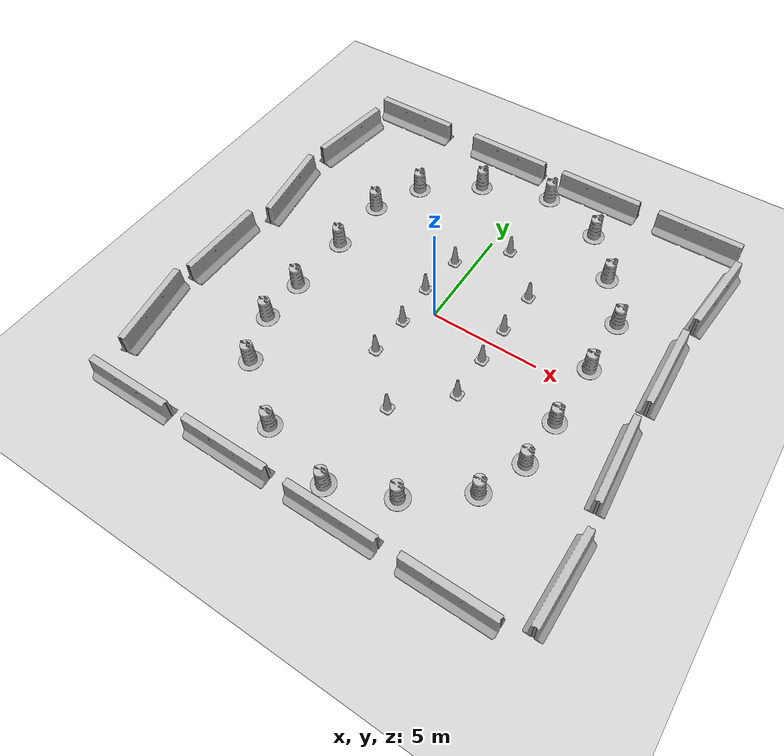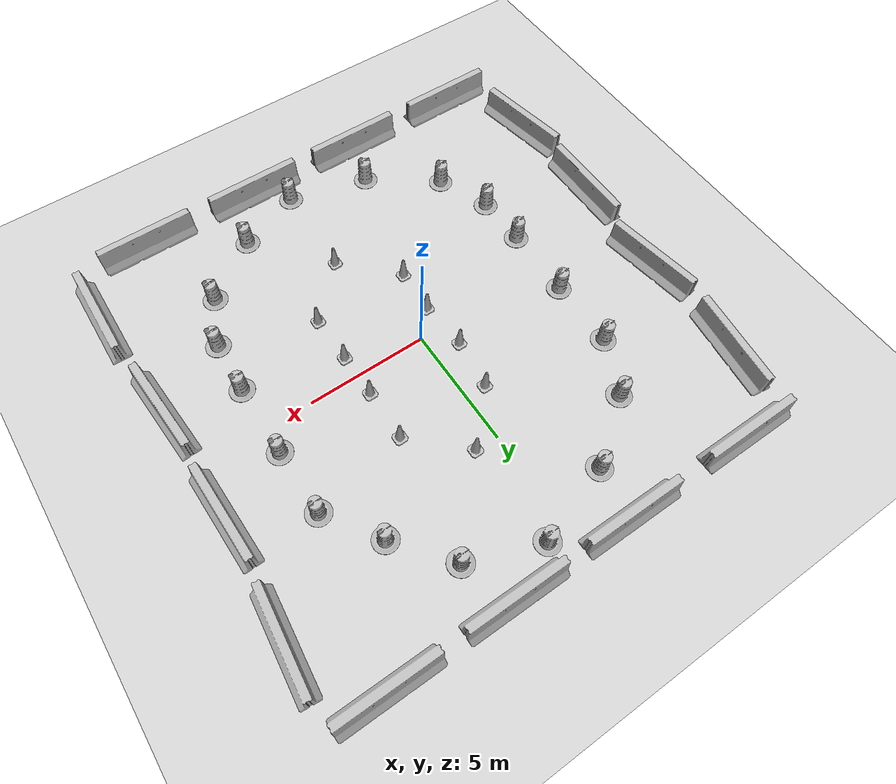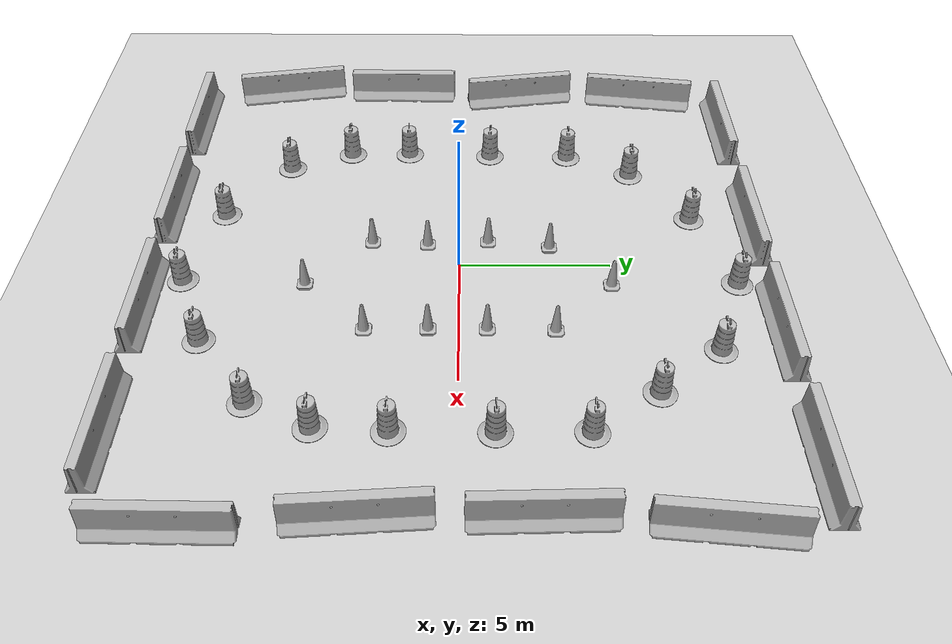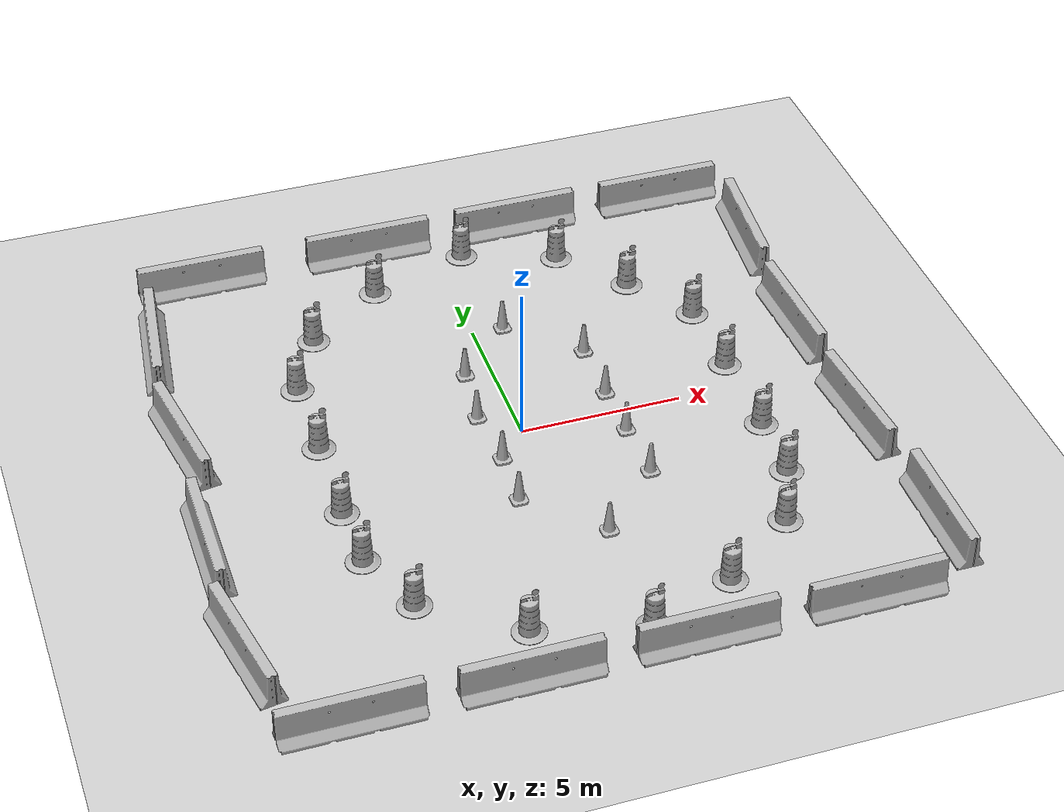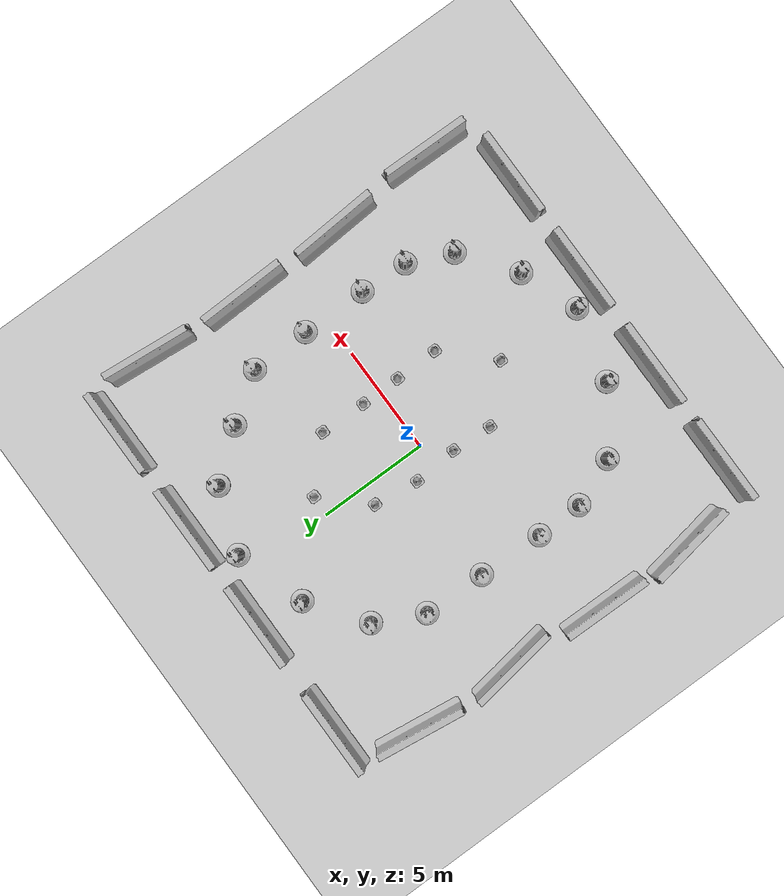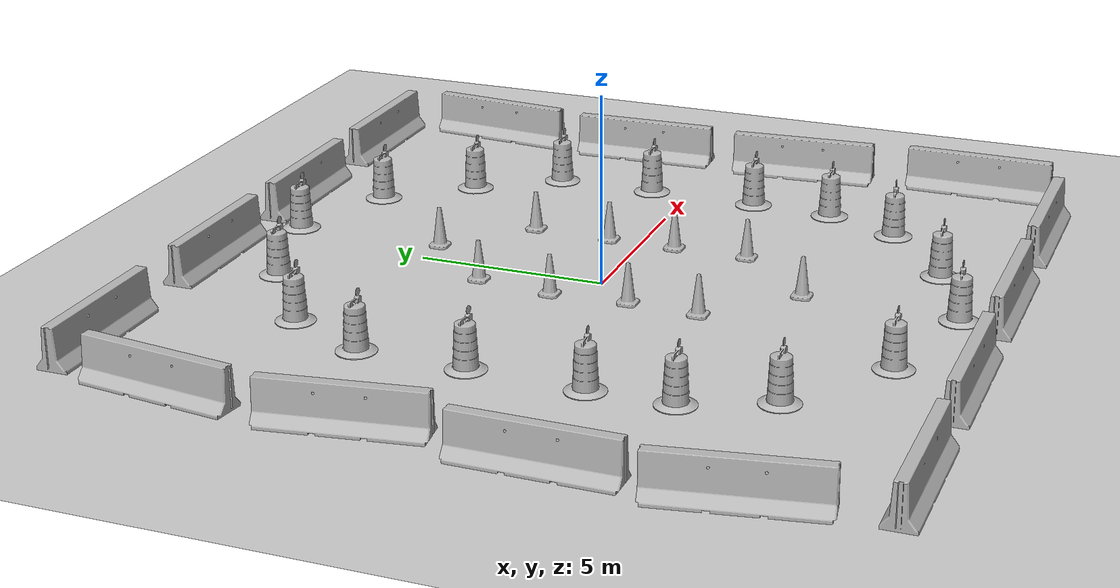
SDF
<sdf version="1.6">
 <world name="default">
  <light name="sun" type="directional">
   <pose>0 0 10 0 -0 0</pose>
   <diffuse>0.8 0.8 0.8 1</diffuse>
   <specular>0.2 0.2 0.2 1</specular>
   <attenuation>
    <range>1000</range>
    <constant>0.9</constant>
    <linear>0.01</linear>
    <quadratic>0.001</quadratic>
   </attenuation>
   <direction>-0.5 0.1 -0.9</direction>
  </light>
  <model name="ground_plane">
   <static>1</static>
   <link name="link">
    <collision name="collision">
     <geometry><plane><normal>0 0 1</normal><size>100 100</size></plane></geometry>
     <surface><friction><ode><mu>100</mu><mu2>50</mu2></ode></friction></surface>
    </collision>
    <visual name="visual">
     <cast_shadows>0</cast_shadows>
     <geometry><plane><normal>0 0 1</normal><size>100 100</size></plane></geometry>
     <material>
      <script><uri>file://media/materials/scripts/gazebo.material</uri><name>Gazebo/Grey</name></script>
     </material>
    </visual>
    <velocity_decay><linear>0</linear><angular>0</angular></velocity_decay>
   </link>
  </model>
  <physics name="default_physics" default="0" type="ode">
   <max_step_size>0.01</max_step_size>
   <real_time_factor>1</real_time_factor>
   <real_time_update_rate>100</real_time_update_rate>
  </physics>
  <scene><ambient>0.4 0.4 0.4 1</ambient><background>0.7 0.7 0.7 1</background><shadows>1</shadows></scene>
  <model name="jersey_barrier">
   <static>1</static>
   <link name="link">
    <visual name="visual">
     <geometry><mesh><uri>model://jersey_barrier/meshes/jersey_barrier.dae</uri></mesh></geometry>
    </visual>
    <collision name="upright">
     <pose>0 0 0.5715 0 -0 0</pose>
     <geometry><box><size>4.06542 0.3063 1.143</size></box></geometry>
    </collision>
    <collision name="base">
     <pose>0 0 0.032258 0 -0 0</pose>
     <geometry><box><size>4.06542 0.8107 0.064516</size></box></geometry>
    </collision>
    <collision name="base2">
     <pose>0 0 0.1 0 -0 0</pose>
     <geometry><box><size>4.06542 0.65 0.1</size></box></geometry>
    </collision>
    <collision name="base3">
     <pose>0 0 0.2 0 -0 0</pose>
     <geometry><box><size>4.06542 0.5 0.1</size></box></geometry>
    </collision>
    <collision name="left-angle">
     <pose>0 -0.224 0.2401 0.9 -0 0</pose>
     <geometry><box><size>4.06542 0.5 0.064516</size></box></geometry>
    </collision>
    <collision name="right-angle">
     <pose>0 0.224 0.2401 -0.9 0 0</pose>
     <geometry><box><size>4.06542 0.5 0.064516</size></box></geometry>
    </collision>
    <velocity_decay><linear>0</linear><angular>0</angular></velocity_decay>
   </link>
   <pose>-8 -10 0 0 -0 0</pose>
  </model>
  <model name="jersey_barrier_0">
   <static>1</static>
   <link name="link">
    <visual name="visual">
     <geometry><mesh><uri>model://jersey_barrier/meshes/jersey_barrier.dae</uri></mesh></geometry>
    </visual>
    <collision name="upright">
     <pose>0 0 0.5715 0 -0 0</pose>
     <geometry><box><size>4.06542 0.3063 1.143</size></box></geometry>
    </collision>
    <collision name="base">
     <pose>0 0 0.032258 0 -0 0</pose>
     <geometry><box><size>4.06542 0.8107 0.064516</size></box></geometry>
    </collision>
    <collision name="base2">
     <pose>0 0 0.1 0 -0 0</pose>
     <geometry><box><size>4.06542 0.65 0.1</size></box></geometry>
    </collision>
    <collision name="base3">
     <pose>0 0 0.2 0 -0 0</pose>
     <geometry><box><size>4.06542 0.5 0.1</size></box></geometry>
    </collision>
    <collision name="left-angle">
     <pose>0 -0.224 0.2401 0.9 -0 0</pose>
     <geometry><box><size>4.06542 0.5 0.064516</size></box></geometry>
    </collision>
    <collision name="right-angle">
     <pose>0 0.224 0.2401 -0.9 0 0</pose>
     <geometry><box><size>4.06542 0.5 0.064516</size></box></geometry>
    </collision>
    <velocity_decay><linear>0</linear><angular>0</angular></velocity_decay>
   </link>
   <pose>-3 -10 0 0 -0 0</pose>
  </model>
  <model name="jersey_barrier_1">
   <static>1</static>
   <link name="link">
    <visual name="visual">
     <geometry><mesh><uri>model://jersey_barrier/meshes/jersey_barrier.dae</uri></mesh></geometry>
    </visual>
    <collision name="upright">
     <pose>0 0 0.5715 0 -0 0</pose>
     <geometry><box><size>4.06542 0.3063 1.143</size></box></geometry>
    </collision>
    <collision name="base">
     <pose>0 0 0.032258 0 -0 0</pose>
     <geometry><box><size>4.06542 0.8107 0.064516</size></box></geometry>
    </collision>
    <collision name="base2">
     <pose>0 0 0.1 0 -0 0</pose>
     <geometry><box><size>4.06542 0.65 0.1</size></box></geometry>
    </collision>
    <collision name="base3">
     <pose>0 0 0.2 0 -0 0</pose>
     <geometry><box><size>4.06542 0.5 0.1</size></box></geometry>
    </collision>
    <collision name="left-angle">
     <pose>0 -0.224 0.2401 0.9 -0 0</pose>
     <geometry><box><size>4.06542 0.5 0.064516</size></box></geometry>
    </collision>
    <collision name="right-angle">
     <pose>0 0.224 0.2401 -0.9 0 0</pose>
     <geometry><box><size>4.06542 0.5 0.064516</size></box></geometry>
    </collision>
    <velocity_decay><linear>0</linear><angular>0</angular></velocity_decay>
   </link>
   <pose>2 -10 0 0 -0 0</pose>
  </model>
  <model name="jersey_barrier_2">
   <static>1</static>
   <link name="link">
    <visual name="visual">
     <geometry><mesh><uri>model://jersey_barrier/meshes/jersey_barrier.dae</uri></mesh></geometry>
    </visual>
    <collision name="upright">
     <pose>0 0 0.5715 0 -0 0</pose>
     <geometry><box><size>4.06542 0.3063 1.143</size></box></geometry>
    </collision>
    <collision name="base">
     <pose>0 0 0.032258 0 -0 0</pose>
     <geometry><box><size>4.06542 0.8107 0.064516</size></box></geometry>
    </collision>
    <collision name="base2">
     <pose>0 0 0.1 0 -0 0</pose>
     <geometry><box><size>4.06542 0.65 0.1</size></box></geometry>
    </collision>
    <collision name="base3">
     <pose>0 0 0.2 0 -0 0</pose>
     <geometry><box><size>4.06542 0.5 0.1</size></box></geometry>
    </collision>
    <collision name="left-angle">
     <pose>0 -0.224 0.2401 0.9 -0 0</pose>
     <geometry><box><size>4.06542 0.5 0.064516</size></box></geometry>
    </collision>
    <collision name="right-angle">
     <pose>0 0.224 0.2401 -0.9 0 0</pose>
     <geometry><box><size>4.06542 0.5 0.064516</size></box></geometry>
    </collision>
    <velocity_decay><linear>0</linear><angular>0</angular></velocity_decay>
   </link>
   <pose>7 -10 0 0 -0 0</pose>
  </model>
  <model name="jersey_barrier_3">
   <static>1</static>
   <link name="link">
    <visual name="visual">
     <geometry><mesh><uri>model://jersey_barrier/meshes/jersey_barrier.dae</uri></mesh></geometry>
    </visual>
    <collision name="upright">
     <pose>0 0 0.5715 0 -0 0</pose>
     <geometry><box><size>4.06542 0.3063 1.143</size></box></geometry>
    </collision>
    <collision name="base">
     <pose>0 0 0.032258 0 -0 0</pose>
     <geometry><box><size>4.06542 0.8107 0.064516</size></box></geometry>
    </collision>
    <collision name="base2">
     <pose>0 0 0.1 0 -0 0</pose>
     <geometry><box><size>4.06542 0.65 0.1</size></box></geometry>
    </collision>
    <collision name="base3">
     <pose>0 0 0.2 0 -0 0</pose>
     <geometry><box><size>4.06542 0.5 0.1</size></box></geometry>
    </collision>
    <collision name="left-angle">
     <pose>0 -0.224 0.2401 0.9 -0 0</pose>
     <geometry><box><size>4.06542 0.5 0.064516</size></box></geometry>
    </collision>
    <collision name="right-angle">
     <pose>0 0.224 0.2401 -0.9 0 0</pose>
     <geometry><box><size>4.06542 0.5 0.064516</size></box></geometry>
    </collision>
    <velocity_decay><linear>0</linear><angular>0</angular></velocity_decay>
   </link>
   <pose>-7.50675 10 0 0 -0 0</pose>
  </model>
  <model name="jersey_barrier_4">
   <static>1</static>
   <link name="link">
    <visual name="visual">
     <geometry><mesh><uri>model://jersey_barrier/meshes/jersey_barrier.dae</uri></mesh></geometry>
    </visual>
    <collision name="upright">
     <pose>0 0 0.5715 0 -0 0</pose>
     <geometry><box><size>4.06542 0.3063 1.143</size></box></geometry>
    </collision>
    <collision name="base">
     <pose>0 0 0.032258 0 -0 0</pose>
     <geometry><box><size>4.06542 0.8107 0.064516</size></box></geometry>
    </collision>
    <collision name="base2">
     <pose>0 0 0.1 0 -0 0</pose>
     <geometry><box><size>4.06542 0.65 0.1</size></box></geometry>
    </collision>
    <collision name="base3">
     <pose>0 0 0.2 0 -0 0</pose>
     <geometry><box><size>4.06542 0.5 0.1</size></box></geometry>
    </collision>
    <collision name="left-angle">
     <pose>0 -0.224 0.2401 0.9 -0 0</pose>
     <geometry><box><size>4.06542 0.5 0.064516</size></box></geometry>
    </collision>
    <collision name="right-angle">
     <pose>0 0.224 0.2401 -0.9 0 0</pose>
     <geometry><box><size>4.06542 0.5 0.064516</size></box></geometry>
    </collision>
    <velocity_decay><linear>0</linear><angular>0</angular></velocity_decay>
   </link>
   <pose>-2 10 0 0 -0 0</pose>
  </model>
  <model name="jersey_barrier_5">
   <static>1</static>
   <link name="link">
    <visual name="visual">
     <geometry><mesh><uri>model://jersey_barrier/meshes/jersey_barrier.dae</uri></mesh></geometry>
    </visual>
    <collision name="upright">
     <pose>0 0 0.5715 0 -0 0</pose>
     <geometry><box><size>4.06542 0.3063 1.143</size></box></geometry>
    </collision>
    <collision name="base">
     <pose>0 0 0.032258 0 -0 0</pose>
     <geometry><box><size>4.06542 0.8107 0.064516</size></box></geometry>
    </collision>
    <collision name="base2">
     <pose>0 0 0.1 0 -0 0</pose>
     <geometry><box><size>4.06542 0.65 0.1</size></box></geometry>
    </collision>
    <collision name="base3">
     <pose>0 0 0.2 0 -0 0</pose>
     <geometry><box><size>4.06542 0.5 0.1</size></box></geometry>
    </collision>
    <collision name="left-angle">
     <pose>0 -0.224 0.2401 0.9 -0 0</pose>
     <geometry><box><size>4.06542 0.5 0.064516</size></box></geometry>
    </collision>
    <collision name="right-angle">
     <pose>0 0.224 0.2401 -0.9 0 0</pose>
     <geometry><box><size>4.06542 0.5 0.064516</size></box></geometry>
    </collision>
    <velocity_decay><linear>0</linear><angular>0</angular></velocity_decay>
   </link>
   <pose>3 10 0 0 -0 0</pose>
  </model>
  <model name="jersey_barrier_6">
   <static>1</static>
   <link name="link">
    <visual name="visual">
     <geometry><mesh><uri>model://jersey_barrier/meshes/jersey_barrier.dae</uri></mesh></geometry>
    </visual>
    <collision name="upright">
     <pose>0 0 0.5715 0 -0 0</pose>
     <geometry><box><size>4.06542 0.3063 1.143</size></box></geometry>
    </collision>
    <collision name="base">
     <pose>0 0 0.032258 0 -0 0</pose>
     <geometry><box><size>4.06542 0.8107 0.064516</size></box></geometry>
    </collision>
    <collision name="base2">
     <pose>0 0 0.1 0 -0 0</pose>
     <geometry><box><size>4.06542 0.65 0.1</size></box></geometry>
    </collision>
    <collision name="base3">
     <pose>0 0 0.2 0 -0 0</pose>
     <geometry><box><size>4.06542 0.5 0.1</size></box></geometry>
    </collision>
    <collision name="left-angle">
     <pose>0 -0.224 0.2401 0.9 -0 0</pose>
     <geometry><box><size>4.06542 0.5 0.064516</size></box></geometry>
    </collision>
    <collision name="right-angle">
     <pose>0 0.224 0.2401 -0.9 0 0</pose>
     <geometry><box><size>4.06542 0.5 0.064516</size></box></geometry>
    </collision>
    <velocity_decay><linear>0</linear><angular>0</angular></velocity_decay>
   </link>
   <pose>8 10 0 0 -0 0</pose>
  </model>
  <model name="jersey_barrier_7">
   <static>1</static>
   <link name="link">
    <visual name="visual">
     <geometry><mesh><uri>model://jersey_barrier/meshes/jersey_barrier.dae</uri></mesh></geometry>
    </visual>
    <collision name="upright">
     <pose>0 0 0.5715 0 -0 0</pose>
     <geometry><box><size>4.06542 0.3063 1.143</size></box></geometry>
    </collision>
    <collision name="base">
     <pose>0 0 0.032258 0 -0 0</pose>
     <geometry><box><size>4.06542 0.8107 0.064516</size></box></geometry>
    </collision>
    <collision name="base2">
     <pose>0 0 0.1 0 -0 0</pose>
     <geometry><box><size>4.06542 0.65 0.1</size></box></geometry>
    </collision>
    <collision name="base3">
     <pose>0 0 0.2 0 -0 0</pose>
     <geometry><box><size>4.06542 0.5 0.1</size></box></geometry>
    </collision>
    <collision name="left-angle">
     <pose>0 -0.224 0.2401 0.9 -0 0</pose>
     <geometry><box><size>4.06542 0.5 0.064516</size></box></geometry>
    </collision>
    <collision name="right-angle">
     <pose>0 0.224 0.2401 -0.9 0 0</pose>
     <geometry><box><size>4.06542 0.5 0.064516</size></box></geometry>
    </collision>
    <velocity_decay><linear>0</linear><angular>0</angular></velocity_decay>
   </link>
   <pose>9.74902 -2.57759 0 0 -0 1.64</pose>
  </model>
  <model name="jersey_barrier_8">
   <static>1</static>
   <link name="link">
    <visual name="visual">
     <geometry><mesh><uri>model://jersey_barrier/meshes/jersey_barrier.dae</uri></mesh></geometry>
    </visual>
    <collision name="upright">
     <pose>0 0 0.5715 0 -0 0</pose>
     <geometry><box><size>4.06542 0.3063 1.143</size></box></geometry>
    </collision>
    <collision name="base">
     <pose>0 0 0.032258 0 -0 0</pose>
     <geometry><box><size>4.06542 0.8107 0.064516</size></box></geometry>
    </collision>
    <collision name="base2">
     <pose>0 0 0.1 0 -0 0</pose>
     <geometry><box><size>4.06542 0.65 0.1</size></box></geometry>
    </collision>
    <collision name="base3">
     <pose>0 0 0.2 0 -0 0</pose>
     <geometry><box><size>4.06542 0.5 0.1</size></box></geometry>
    </collision>
    <collision name="left-angle">
     <pose>0 -0.224 0.2401 0.9 -0 0</pose>
     <geometry><box><size>4.06542 0.5 0.064516</size></box></geometry>
    </collision>
    <collision name="right-angle">
     <pose>0 0.224 0.2401 -0.9 0 0</pose>
     <geometry><box><size>4.06542 0.5 0.064516</size></box></geometry>
    </collision>
    <velocity_decay><linear>0</linear><angular>0</angular></velocity_decay>
   </link>
   <pose>9.70141 2.24369 0 0 -0 1.6</pose>
  </model>
  <model name="jersey_barrier_9">
   <static>1</static>
   <link name="link">
    <visual name="visual">
     <geometry><mesh><uri>model://jersey_barrier/meshes/jersey_barrier.dae</uri></mesh></geometry>
    </visual>
    <collision name="upright">
     <pose>0 0 0.5715 0 -0 0</pose>
     <geometry><box><size>4.06542 0.3063 1.143</size></box></geometry>
    </collision>
    <collision name="base">
     <pose>0 0 0.032258 0 -0 0</pose>
     <geometry><box><size>4.06542 0.8107 0.064516</size></box></geometry>
    </collision>
    <collision name="base2">
     <pose>0 0 0.1 0 -0 0</pose>
     <geometry><box><size>4.06542 0.65 0.1</size></box></geometry>
    </collision>
    <collision name="base3">
     <pose>0 0 0.2 0 -0 0</pose>
     <geometry><box><size>4.06542 0.5 0.1</size></box></geometry>
    </collision>
    <collision name="left-angle">
     <pose>0 -0.224 0.2401 0.9 -0 0</pose>
     <geometry><box><size>4.06542 0.5 0.064516</size></box></geometry>
    </collision>
    <collision name="right-angle">
     <pose>0 0.224 0.2401 -0.9 0 0</pose>
     <geometry><box><size>4.06542 0.5 0.064516</size></box></geometry>
    </collision>
    <velocity_decay><linear>0</linear><angular>0</angular></velocity_decay>
   </link>
   <pose>-10.0607 -6.69856 0 0 0 -1.4</pose>
  </model>
  <model name="jersey_barrier_10">
   <static>1</static>
   <link name="link">
    <visual name="visual">
     <geometry><mesh><uri>model://jersey_barrier/meshes/jersey_barrier.dae</uri></mesh></geometry>
    </visual>
    <collision name="upright">
     <pose>0 0 0.5715 0 -0 0</pose>
     <geometry><box><size>4.06542 0.3063 1.143</size></box></geometry>
    </collision>
    <collision name="base">
     <pose>0 0 0.032258 0 -0 0</pose>
     <geometry><box><size>4.06542 0.8107 0.064516</size></box></geometry>
    </collision>
    <collision name="base2">
     <pose>0 0 0.1 0 -0 0</pose>
     <geometry><box><size>4.06542 0.65 0.1</size></box></geometry>
    </collision>
    <collision name="base3">
     <pose>0 0 0.2 0 -0 0</pose>
     <geometry><box><size>4.06542 0.5 0.1</size></box></geometry>
    </collision>
    <collision name="left-angle">
     <pose>0 -0.224 0.2401 0.9 -0 0</pose>
     <geometry><box><size>4.06542 0.5 0.064516</size></box></geometry>
    </collision>
    <collision name="right-angle">
     <pose>0 0.224 0.2401 -0.9 0 0</pose>
     <geometry><box><size>4.06542 0.5 0.064516</size></box></geometry>
    </collision>
    <velocity_decay><linear>0</linear><angular>0</angular></velocity_decay>
   </link>
   <pose>-10.0774 -2.27159 0 0 -0 1.56</pose>
  </model>
  <model name="jersey_barrier_11">
   <static>1</static>
   <link name="link">
    <visual name="visual">
     <geometry><mesh><uri>model://jersey_barrier/meshes/jersey_barrier.dae</uri></mesh></geometry>
    </visual>
    <collision name="upright">
     <pose>0 0 0.5715 0 -0 0</pose>
     <geometry><box><size>4.06542 0.3063 1.143</size></box></geometry>
    </collision>
    <collision name="base">
     <pose>0 0 0.032258 0 -0 0</pose>
     <geometry><box><size>4.06542 0.8107 0.064516</size></box></geometry>
    </collision>
    <collision name="base2">
     <pose>0 0 0.1 0 -0 0</pose>
     <geometry><box><size>4.06542 0.65 0.1</size></box></geometry>
    </collision>
    <collision name="base3">
     <pose>0 0 0.2 0 -0 0</pose>
     <geometry><box><size>4.06542 0.5 0.1</size></box></geometry>
    </collision>
    <collision name="left-angle">
     <pose>0 -0.224 0.2401 0.9 -0 0</pose>
     <geometry><box><size>4.06542 0.5 0.064516</size></box></geometry>
    </collision>
    <collision name="right-angle">
     <pose>0 0.224 0.2401 -0.9 0 0</pose>
     <geometry><box><size>4.06542 0.5 0.064516</size></box></geometry>
    </collision>
    <velocity_decay><linear>0</linear><angular>0</angular></velocity_decay>
   </link>
   <pose>-9.77013 2.34791 0 0 -0 1.72</pose>
  </model>
  <model name="jersey_barrier_12">
   <static>1</static>
   <link name="link">
    <visual name="visual">
     <geometry><mesh><uri>model://jersey_barrier/meshes/jersey_barrier.dae</uri></mesh></geometry>
    </visual>
    <collision name="upright">
     <pose>0 0 0.5715 0 -0 0</pose>
     <geometry><box><size>4.06542 0.3063 1.143</size></box></geometry>
    </collision>
    <collision name="base">
     <pose>0 0 0.032258 0 -0 0</pose>
     <geometry><box><size>4.06542 0.8107 0.064516</size></box></geometry>
    </collision>
    <collision name="base2">
     <pose>0 0 0.1 0 -0 0</pose>
     <geometry><box><size>4.06542 0.65 0.1</size></box></geometry>
    </collision>
    <collision name="base3">
     <pose>0 0 0.2 0 -0 0</pose>
     <geometry><box><size>4.06542 0.5 0.1</size></box></geometry>
    </collision>
    <collision name="left-angle">
     <pose>0 -0.224 0.2401 0.9 -0 0</pose>
     <geometry><box><size>4.06542 0.5 0.064516</size></box></geometry>
    </collision>
    <collision name="right-angle">
     <pose>0 0.224 0.2401 -0.9 0 0</pose>
     <geometry><box><size>4.06542 0.5 0.064516</size></box></geometry>
    </collision>
    <velocity_decay><linear>0</linear><angular>0</angular></velocity_decay>
   </link>
   <pose>10.0879 -7.62159 0 0 -0 1.56</pose>
  </model>
  <model name="jersey_barrier_13">
   <static>1</static>
   <link name="link">
    <visual name="visual">
     <geometry><mesh><uri>model://jersey_barrier/meshes/jersey_barrier.dae</uri></mesh></geometry>
    </visual>
    <collision name="upright">
     <pose>0 0 0.5715 0 -0 0</pose>
     <geometry><box><size>4.06542 0.3063 1.143</size></box></geometry>
    </collision>
    <collision name="base">
     <pose>0 0 0.032258 0 -0 0</pose>
     <geometry><box><size>4.06542 0.8107 0.064516</size></box></geometry>
    </collision>
    <collision name="base2">
     <pose>0 0 0.1 0 -0 0</pose>
     <geometry><box><size>4.06542 0.65 0.1</size></box></geometry>
    </collision>
    <collision name="base3">
     <pose>0 0 0.2 0 -0 0</pose>
     <geometry><box><size>4.06542 0.5 0.1</size></box></geometry>
    </collision>
    <collision name="left-angle">
     <pose>0 -0.224 0.2401 0.9 -0 0</pose>
     <geometry><box><size>4.06542 0.5 0.064516</size></box></geometry>
    </collision>
    <collision name="right-angle">
     <pose>0 0.224 0.2401 -0.9 0 0</pose>
     <geometry><box><size>4.06542 0.5 0.064516</size></box></geometry>
    </collision>
    <velocity_decay><linear>0</linear><angular>0</angular></velocity_decay>
   </link>
   <pose>10 7 0 0 -0 1.48</pose>
  </model>
  <model name="jersey_barrier_14">
   <static>1</static>
   <link name="link">
    <visual name="visual">
     <geometry><mesh><uri>model://jersey_barrier/meshes/jersey_barrier.dae</uri></mesh></geometry>
    </visual>
    <collision name="upright">
     <pose>0 0 0.5715 0 -0 0</pose>
     <geometry><box><size>4.06542 0.3063 1.143</size></box></geometry>
    </collision>
    <collision name="base">
     <pose>0 0 0.032258 0 -0 0</pose>
     <geometry><box><size>4.06542 0.8107 0.064516</size></box></geometry>
    </collision>
    <collision name="base2">
     <pose>0 0 0.1 0 -0 0</pose>
     <geometry><box><size>4.06542 0.65 0.1</size></box></geometry>
    </collision>
    <collision name="base3">
     <pose>0 0 0.2 0 -0 0</pose>
     <geometry><box><size>4.06542 0.5 0.1</size></box></geometry>
    </collision>
    <collision name="left-angle">
     <pose>0 -0.224 0.2401 0.9 -0 0</pose>
     <geometry><box><size>4.06542 0.5 0.064516</size></box></geometry>
    </collision>
    <collision name="right-angle">
     <pose>0 0.224 0.2401 -0.9 0 0</pose>
     <geometry><box><size>4.06542 0.5 0.064516</size></box></geometry>
    </collision>
    <velocity_decay><linear>0</linear><angular>0</angular></velocity_decay>
   </link>
   <pose>-9.64482 7.05946 0 0 -0 1.44</pose>
  </model>
  <model name="Construction Cone">
   <link name="link">
    <collision name="collision">
     <geometry>
      <mesh><scale>10 10 10</scale><uri>model://construction_cone/meshes/construction_cone.dae</uri></mesh>
     </geometry>
    </collision>
    <visual name="visual">
     <geometry>
      <mesh><scale>10 10 10</scale><uri>model://construction_cone/meshes/construction_cone.dae</uri></mesh>
     </geometry>
    </visual>
    <velocity_decay><linear>0</linear><angular>0</angular></velocity_decay>
    <inertial>
     <inertia><ixx>1</ixx><ixy>0</ixy><ixz>0</ixz><iyy>1</iyy><iyz>0</iyz><izz>1</izz></inertia>
     <mass>1</mass>
    </inertial>
   </link>
   <pose>-1.06594 -2.92263 -1e-06 -4e-06 2e-06 0</pose>
   <static>0</static>
  </model>
  <model name="Construction Barrel">
   <link name="link">
    <inertial>
     <pose>0 0 0.4 0 -0 0</pose>
     <mass>500</mass>
     <inertia><ixx>51.2096</ixx><iyy>51.2096</iyy><izz>25</izz><ixy>0</ixy><ixz>0</ixz><iyz>0</iyz></inertia>
    </inertial>
    <collision name="collision">
     <geometry><mesh><uri>model://construction_barrel/meshes/construction_barrel.dae</uri></mesh></geometry>
    </collision>
    <visual name="visual">
     <geometry><mesh><uri>model://construction_barrel/meshes/construction_barrel.dae</uri></mesh></geometry>
    </visual>
    <velocity_decay><linear>0</linear><angular>0</angular></velocity_decay>
   </link>
   <pose>6.78044 -4.15901 -8.8e-05 -8.2e-05 0.000332 -0.001292</pose>
   <static>0</static>
  </model>
  <model name="Construction Cone_0">
   <link name="link">
    <collision name="collision">
     <geometry>
      <mesh><scale>10 10 10</scale><uri>model://construction_cone/meshes/construction_cone.dae</uri></mesh>
     </geometry>
    </collision>
    <visual name="visual">
     <geometry>
      <mesh><scale>10 10 10</scale><uri>model://construction_cone/meshes/construction_cone.dae</uri></mesh>
     </geometry>
    </visual>
    <velocity_decay><linear>0</linear><angular>0</angular></velocity_decay>
    <inertial>
     <inertia><ixx>1</ixx><ixy>0</ixy><ixz>0</ixz><iyy>1</iyy><iyz>0</iyz><izz>1</izz></inertia>
     <mass>1</mass>
    </inertial>
   </link>
   <pose>2.95093 -0.94273 -1e-06 -4e-06 2e-06 -0.00109</pose>
   <static>0</static>
  </model>
  <model name="Construction Barrel_0">
   <link name="link">
    <inertial>
     <pose>0 0 0.4 0 -0 0</pose>
     <mass>500</mass>
     <inertia><ixx>51.2096</ixx><iyy>51.2096</iyy><izz>25</izz><ixy>0</ixy><ixz>0</ixz><iyz>0</iyz></inertia>
    </inertial>
    <collision name="collision">
     <geometry><mesh><uri>model://construction_barrel/meshes/construction_barrel.dae</uri></mesh></geometry>
    </collision>
    <visual name="visual">
     <geometry><mesh><uri>model://construction_barrel/meshes/construction_barrel.dae</uri></mesh></geometry>
    </visual>
    <velocity_decay><linear>0</linear><angular>0</angular></velocity_decay>
   </link>
   <pose>-5.16702 -6.18378 -8.8e-05 -8.2e-05 0.000332 -0.001945</pose>
   <static>0</static>
  </model>
  <model name="Construction Barrel_1">
   <link name="link">
    <inertial>
     <pose>0 0 0.4 0 -0 0</pose>
     <mass>500</mass>
     <inertia><ixx>51.2096</ixx><iyy>51.2096</iyy><izz>25</izz><ixy>0</ixy><ixz>0</ixz><iyz>0</iyz></inertia>
    </inertial>
    <collision name="collision">
     <geometry><mesh><uri>model://construction_barrel/meshes/construction_barrel.dae</uri></mesh></geometry>
    </collision>
    <visual name="visual">
     <geometry><mesh><uri>model://construction_barrel/meshes/construction_barrel.dae</uri></mesh></geometry>
    </visual>
    <velocity_decay><linear>0</linear><angular>0</angular></velocity_decay>
   </link>
   <pose>-6.04842 -4.02397 -8.8e-05 -8.2e-05 0.000332 -0.011396</pose>
   <static>0</static>
  </model>
  <model name="Construction Barrel_2">
   <link name="link">
    <inertial>
     <pose>0 0 0.4 0 -0 0</pose>
     <mass>500</mass>
     <inertia><ixx>51.2096</ixx><iyy>51.2096</iyy><izz>25</izz><ixy>0</ixy><ixz>0</ixz><iyz>0</iyz></inertia>
    </inertial>
    <collision name="collision">
     <geometry><mesh><uri>model://construction_barrel/meshes/construction_barrel.dae</uri></mesh></geometry>
    </collision>
    <visual name="visual">
     <geometry><mesh><uri>model://construction_barrel/meshes/construction_barrel.dae</uri></mesh></geometry>
    </visual>
    <velocity_decay><linear>0</linear><angular>0</angular></velocity_decay>
   </link>
   <pose>-6.0805 -1.88229 -9e-05 0.000306 -0.000177 0.063704</pose>
   <static>0</static>
  </model>
  <model name="Construction Barrel_3">
   <link name="link">
    <inertial>
     <pose>0 0 0.4 0 -0 0</pose>
     <mass>500</mass>
     <inertia><ixx>51.2096</ixx><iyy>51.2096</iyy><izz>25</izz><ixy>0</ixy><ixz>0</ixz><iyz>0</iyz></inertia>
    </inertial>
    <collision name="collision">
     <geometry><mesh><uri>model://construction_barrel/meshes/construction_barrel.dae</uri></mesh></geometry>
    </collision>
    <visual name="visual">
     <geometry><mesh><uri>model://construction_barrel/meshes/construction_barrel.dae</uri></mesh></geometry>
    </visual>
    <velocity_decay><linear>0</linear><angular>0</angular></velocity_decay>
   </link>
   <pose>-5.97827 1.11783 -8.7e-05 -7.9e-05 0.000332 -0.124019</pose>
   <static>0</static>
  </model>
  <model name="Construction Barrel_4">
   <link name="link">
    <inertial>
     <pose>0 0 0.4 0 -0 0</pose>
     <mass>500</mass>
     <inertia><ixx>51.2096</ixx><iyy>51.2096</iyy><izz>25</izz><ixy>0</ixy><ixz>0</ixz><iyz>0</iyz></inertia>
    </inertial>
    <collision name="collision">
     <geometry><mesh><uri>model://construction_barrel/meshes/construction_barrel.dae</uri></mesh></geometry>
    </collision>
    <visual name="visual">
     <geometry><mesh><uri>model://construction_barrel/meshes/construction_barrel.dae</uri></mesh></geometry>
    </visual>
    <velocity_decay><linear>0</linear><angular>0</angular></velocity_decay>
   </link>
   <pose>-5.91681 3.97098 -9.1e-05 0.000309 -0.000178 -0.051963</pose>
   <static>0</static>
  </model>
  <model name="Construction Barrel_5">
   <link name="link">
    <inertial>
     <pose>0 0 0.4 0 -0 0</pose>
     <mass>500</mass>
     <inertia><ixx>51.2096</ixx><iyy>51.2096</iyy><izz>25</izz><ixy>0</ixy><ixz>0</ixz><iyz>0</iyz></inertia>
    </inertial>
    <collision name="collision">
     <geometry><mesh><uri>model://construction_barrel/meshes/construction_barrel.dae</uri></mesh></geometry>
    </collision>
    <visual name="visual">
     <geometry><mesh><uri>model://construction_barrel/meshes/construction_barrel.dae</uri></mesh></geometry>
    </visual>
    <velocity_decay><linear>0</linear><angular>0</angular></velocity_decay>
   </link>
   <pose>5.89914 -6.15613 -8.8e-05 -8.5e-05 0.000333 0.13519</pose>
   <static>0</static>
  </model>
  <model name="Construction Barrel_6">
   <link name="link">
    <inertial>
     <pose>0 0 0.4 0 -0 0</pose>
     <mass>500</mass>
     <inertia><ixx>51.2096</ixx><iyy>51.2096</iyy><izz>25</izz><ixy>0</ixy><ixz>0</ixz><iyz>0</iyz></inertia>
    </inertial>
    <collision name="collision">
     <geometry><mesh><uri>model://construction_barrel/meshes/construction_barrel.dae</uri></mesh></geometry>
    </collision>
    <visual name="visual">
     <geometry><mesh><uri>model://construction_barrel/meshes/construction_barrel.dae</uri></mesh></geometry>
    </visual>
    <velocity_decay><linear>0</linear><angular>0</angular></velocity_decay>
   </link>
   <pose>3.48635 -7.95185 -8.8e-05 -8.3e-05 0.000333 0.061304</pose>
   <static>0</static>
  </model>
  <model name="Construction Barrel_7">
   <link name="link">
    <inertial>
     <pose>0 0 0.4 0 -0 0</pose>
     <mass>500</mass>
     <inertia><ixx>51.2096</ixx><iyy>51.2096</iyy><izz>25</izz><ixy>0</ixy><ixz>0</ixz><iyz>0</iyz></inertia>
    </inertial>
    <collision name="collision">
     <geometry><mesh><uri>model://construction_barrel/meshes/construction_barrel.dae</uri></mesh></geometry>
    </collision>
    <visual name="visual">
     <geometry><mesh><uri>model://construction_barrel/meshes/construction_barrel.dae</uri></mesh></geometry>
    </visual>
    <velocity_decay><linear>0</linear><angular>0</angular></velocity_decay>
   </link>
   <pose>0.823115 -8.98998 -9e-05 0.000305 -0.000176 0.103827</pose>
   <static>0</static>
  </model>
  <model name="Construction Cone_1">
   <link name="link">
    <collision name="collision">
     <geometry>
      <mesh><scale>10 10 10</scale><uri>model://construction_cone/meshes/construction_cone.dae</uri></mesh>
     </geometry>
    </collision>
    <visual name="visual">
     <geometry>
      <mesh><scale>10 10 10</scale><uri>model://construction_cone/meshes/construction_cone.dae</uri></mesh>
     </geometry>
    </visual>
    <velocity_decay><linear>0</linear><angular>0</angular></velocity_decay>
    <inertial>
     <inertia><ixx>1</ixx><ixy>0</ixy><ixz>0</ixz><iyy>1</iyy><iyz>0</iyz><izz>1</izz></inertia>
     <mass>1</mass>
    </inertial>
   </link>
   <pose>2.97664 -2.93682 -0 -1e-06 0 0</pose>
   <static>0</static>
  </model>
  <gravity>0 0 -9.8</gravity>
  <magnetic_field>6e-06 2.3e-05 -4.2e-05</magnetic_field>
  <atmosphere type="adiabatic"/>
  <audio><device>default</device></audio>
  <spherical_coordinates>
   <surface_model>EARTH_WGS84</surface_model>
   <latitude_deg>0</latitude_deg>
   <longitude_deg>0</longitude_deg>
   <elevation>0</elevation>
   <heading_deg>0</heading_deg>
  </spherical_coordinates>
  <model name="Construction Barrel_clone">
   <link name="link">
    <inertial>
     <pose>0 0 0.4 0 -0 0</pose>
     <mass>500</mass>
     <inertia><ixx>51.2096</ixx><iyy>51.2096</iyy><izz>25</izz><ixy>0</ixy><ixz>0</ixz><iyz>0</iyz></inertia>
    </inertial>
    <collision name="collision">
     <geometry><mesh><uri>model://construction_barrel/meshes/construction_barrel.dae</uri></mesh></geometry>
    </collision>
    <visual name="visual">
     <geometry><mesh><uri>model://construction_barrel/meshes/construction_barrel.dae</uri></mesh></geometry>
    </visual>
    <velocity_decay><linear>0</linear><angular>0</angular></velocity_decay>
   </link>
   <pose>6.89292 -1.94181 -8.8e-05 -8.2e-05 0.000332 -0.001562</pose>
   <static>0</static>
  </model>
  <model name="Construction Barrel_clone_0">
   <link name="link">
    <inertial>
     <pose>0 0 0.4 0 -0 0</pose>
     <mass>500</mass>
     <inertia><ixx>51.2096</ixx><iyy>51.2096</iyy><izz>25</izz><ixy>0</ixy><ixz>0</ixz><iyz>0</iyz></inertia>
    </inertial>
    <collision name="collision">
     <geometry><mesh><uri>model://construction_barrel/meshes/construction_barrel.dae</uri></mesh></geometry>
    </collision>
    <visual name="visual">
     <geometry><mesh><uri>model://construction_barrel/meshes/construction_barrel.dae</uri></mesh></geometry>
    </visual>
    <velocity_decay><linear>0</linear><angular>0</angular></velocity_decay>
   </link>
   <pose>6.92183 1.07159 -8.8e-05 -8.2e-05 0.000332 -0.001292</pose>
   <static>0</static>
  </model>
  <model name="Construction Barrel_clone_1">
   <link name="link">
    <inertial>
     <pose>0 0 0.4 0 -0 0</pose>
     <mass>500</mass>
     <inertia><ixx>51.2096</ixx><iyy>51.2096</iyy><izz>25</izz><ixy>0</ixy><ixz>0</ixz><iyz>0</iyz></inertia>
    </inertial>
    <collision name="collision">
     <geometry><mesh><uri>model://construction_barrel/meshes/construction_barrel.dae</uri></mesh></geometry>
    </collision>
    <visual name="visual">
     <geometry><mesh><uri>model://construction_barrel/meshes/construction_barrel.dae</uri></mesh></geometry>
    </visual>
    <velocity_decay><linear>0</linear><angular>0</angular></velocity_decay>
   </link>
   <pose>6.89805 3.79714 -8.8e-05 -8.2e-05 0.000332 -0.001292</pose>
   <static>0</static>
  </model>
  <model name="Construction Barrel_clone_2">
   <link name="link">
    <inertial>
     <pose>0 0 0.4 0 -0 0</pose>
     <mass>500</mass>
     <inertia><ixx>51.2096</ixx><iyy>51.2096</iyy><izz>25</izz><ixy>0</ixy><ixz>0</ixz><iyz>0</iyz></inertia>
    </inertial>
    <collision name="collision">
     <geometry><mesh><uri>model://construction_barrel/meshes/construction_barrel.dae</uri></mesh></geometry>
    </collision>
    <visual name="visual">
     <geometry><mesh><uri>model://construction_barrel/meshes/construction_barrel.dae</uri></mesh></geometry>
    </visual>
    <velocity_decay><linear>0</linear><angular>0</angular></velocity_decay>
   </link>
   <pose>5.46078 5.89682 -8.8e-05 -8.2e-05 0.000332 -0.001283</pose>
   <static>0</static>
  </model>
  <model name="Construction Barrel_clone_3">
   <link name="link">
    <inertial>
     <pose>0 0 0.4 0 -0 0</pose>
     <mass>500</mass>
     <inertia><ixx>51.2096</ixx><iyy>51.2096</iyy><izz>25</izz><ixy>0</ixy><ixz>0</ixz><iyz>0</iyz></inertia>
    </inertial>
    <collision name="collision">
     <geometry><mesh><uri>model://construction_barrel/meshes/construction_barrel.dae</uri></mesh></geometry>
    </collision>
    <visual name="visual">
     <geometry><mesh><uri>model://construction_barrel/meshes/construction_barrel.dae</uri></mesh></geometry>
    </visual>
    <velocity_decay><linear>0</linear><angular>0</angular></velocity_decay>
   </link>
   <pose>0.873656 9.04159 -9e-05 0.000308 -0.000178 -0.001287</pose>
   <static>0</static>
  </model>
  <model name="Construction Barrel_clone_4">
   <link name="link">
    <inertial>
     <pose>0 0 0.4 0 -0 0</pose>
     <mass>500</mass>
     <inertia><ixx>51.2096</ixx><iyy>51.2096</iyy><izz>25</izz><ixy>0</ixy><ixz>0</ixz><iyz>0</iyz></inertia>
    </inertial>
    <collision name="collision">
     <geometry><mesh><uri>model://construction_barrel/meshes/construction_barrel.dae</uri></mesh></geometry>
    </collision>
    <visual name="visual">
     <geometry><mesh><uri>model://construction_barrel/meshes/construction_barrel.dae</uri></mesh></geometry>
    </visual>
    <velocity_decay><linear>0</linear><angular>0</angular></velocity_decay>
   </link>
   <pose>-2.34172 7.98172 -8.8e-05 -8.2e-05 0.000332 -0.001272</pose>
   <static>0</static>
  </model>
  <model name="Construction Barrel_clone_5">
   <link name="link">
    <inertial>
     <pose>0 0 0.4 0 -0 0</pose>
     <mass>500</mass>
     <inertia><ixx>51.2096</ixx><iyy>51.2096</iyy><izz>25</izz><ixy>0</ixy><ixz>0</ixz><iyz>0</iyz></inertia>
    </inertial>
    <collision name="collision">
     <geometry><mesh><uri>model://construction_barrel/meshes/construction_barrel.dae</uri></mesh></geometry>
    </collision>
    <visual name="visual">
     <geometry><mesh><uri>model://construction_barrel/meshes/construction_barrel.dae</uri></mesh></geometry>
    </visual>
    <velocity_decay><linear>0</linear><angular>0</angular></velocity_decay>
   </link>
   <pose>-4.83535 6.16498 -8.8e-05 -8.2e-05 0.000332 -0.001275</pose>
   <static>0</static>
  </model>
  <model name="Construction Barrel_0_clone">
   <link name="link">
    <inertial>
     <pose>0 0 0.4 0 -0 0</pose>
     <mass>500</mass>
     <inertia><ixx>51.2096</ixx><iyy>51.2096</iyy><izz>25</izz><ixy>0</ixy><ixz>0</ixz><iyz>0</iyz></inertia>
    </inertial>
    <collision name="collision">
     <geometry><mesh><uri>model://construction_barrel/meshes/construction_barrel.dae</uri></mesh></geometry>
    </collision>
    <visual name="visual">
     <geometry><mesh><uri>model://construction_barrel/meshes/construction_barrel.dae</uri></mesh></geometry>
    </visual>
    <velocity_decay><linear>0</linear><angular>0</angular></velocity_decay>
   </link>
   <pose>-2.4812 -8.14054 -9e-05 0.000308 -0.000178 -0.001949</pose>
   <static>0</static>
  </model>
  <model name="Construction Barrel_0_clone_0">
   <link name="link">
    <inertial>
     <pose>0 0 0.4 0 -0 0</pose>
     <mass>500</mass>
     <inertia><ixx>51.2096</ixx><iyy>51.2096</iyy><izz>25</izz><ixy>0</ixy><ixz>0</ixz><iyz>0</iyz></inertia>
    </inertial>
    <collision name="collision">
     <geometry><mesh><uri>model://construction_barrel/meshes/construction_barrel.dae</uri></mesh></geometry>
    </collision>
    <visual name="visual">
     <geometry><mesh><uri>model://construction_barrel/meshes/construction_barrel.dae</uri></mesh></geometry>
    </visual>
    <velocity_decay><linear>0</linear><angular>0</angular></velocity_decay>
   </link>
   <pose>3.77394 7.98112 -8.8e-05 -8.2e-05 0.000332 -0.001948</pose>
   <static>0</static>
  </model>
  <model name="Construction Cone_0_clone">
   <link name="link">
    <collision name="collision">
     <geometry>
      <mesh><scale>10 10 10</scale><uri>model://construction_cone/meshes/construction_cone.dae</uri></mesh>
     </geometry>
    </collision>
    <visual name="visual">
     <geometry>
      <mesh><scale>10 10 10</scale><uri>model://construction_cone/meshes/construction_cone.dae</uri></mesh>
     </geometry>
    </visual>
    <velocity_decay><linear>0</linear><angular>0</angular></velocity_decay>
    <inertial>
     <inertia><ixx>1</ixx><ixy>0</ixy><ixz>0</ixz><iyy>1</iyy><iyz>0</iyz><izz>1</izz></inertia>
     <mass>1</mass>
    </inertial>
   </link>
   <pose>2.94382 0.889301 -0 0 -0 -0.00109</pose>
   <static>0</static>
  </model>
  <model name="Construction Cone_0_clone_0">
   <link name="link">
    <collision name="collision">
     <geometry>
      <mesh><scale>10 10 10</scale><uri>model://construction_cone/meshes/construction_cone.dae</uri></mesh>
     </geometry>
    </collision>
    <visual name="visual">
     <geometry>
      <mesh><scale>10 10 10</scale><uri>model://construction_cone/meshes/construction_cone.dae</uri></mesh>
     </geometry>
    </visual>
    <velocity_decay><linear>0</linear><angular>0</angular></velocity_decay>
    <inertial>
     <inertia><ixx>1</ixx><ixy>0</ixy><ixz>0</ixz><iyy>1</iyy><iyz>0</iyz><izz>1</izz></inertia>
     <mass>1</mass>
    </inertial>
   </link>
   <pose>2.98925 3.01898 -1e-06 -4e-06 2e-06 -0.00109</pose>
   <static>0</static>
  </model>
  <model name="Construction Cone_0_clone_1">
   <link name="link">
    <collision name="collision">
     <geometry>
      <mesh><scale>10 10 10</scale><uri>model://construction_cone/meshes/construction_cone.dae</uri></mesh>
     </geometry>
    </collision>
    <visual name="visual">
     <geometry>
      <mesh><scale>10 10 10</scale><uri>model://construction_cone/meshes/construction_cone.dae</uri></mesh>
     </geometry>
    </visual>
    <velocity_decay><linear>0</linear><angular>0</angular></velocity_decay>
    <inertial>
     <inertia><ixx>1</ixx><ixy>0</ixy><ixz>0</ixz><iyy>1</iyy><iyz>0</iyz><izz>1</izz></inertia>
     <mass>1</mass>
    </inertial>
   </link>
   <pose>-0.965579 -1.05381 -0 0 -0 -0.00109</pose>
   <static>0</static>
  </model>
  <model name="Construction Cone_0_clone_2">
   <link name="link">
    <collision name="collision">
     <geometry>
      <mesh><scale>10 10 10</scale><uri>model://construction_cone/meshes/construction_cone.dae</uri></mesh>
     </geometry>
    </collision>
    <visual name="visual">
     <geometry>
      <mesh><scale>10 10 10</scale><uri>model://construction_cone/meshes/construction_cone.dae</uri></mesh>
     </geometry>
    </visual>
    <velocity_decay><linear>0</linear><angular>0</angular></velocity_decay>
    <inertial>
     <inertia><ixx>1</ixx><ixy>0</ixy><ixz>0</ixz><iyy>1</iyy><iyz>0</iyz><izz>1</izz></inertia>
     <mass>1</mass>
    </inertial>
   </link>
   <pose>-1.11211 0.981346 -1e-06 -4e-06 2e-06 -0.00109</pose>
   <static>0</static>
  </model>
  <model name="Construction Cone_0_clone_3">
   <link name="link">
    <collision name="collision">
     <geometry>
      <mesh><scale>10 10 10</scale><uri>model://construction_cone/meshes/construction_cone.dae</uri></mesh>
     </geometry>
    </collision>
    <visual name="visual">
     <geometry>
      <mesh><scale>10 10 10</scale><uri>model://construction_cone/meshes/construction_cone.dae</uri></mesh>
     </geometry>
    </visual>
    <velocity_decay><linear>0</linear><angular>0</angular></velocity_decay>
    <inertial>
     <inertia><ixx>1</ixx><ixy>0</ixy><ixz>0</ixz><iyy>1</iyy><iyz>0</iyz><izz>1</izz></inertia>
     <mass>1</mass>
    </inertial>
   </link>
   <pose>-0.851041 3.0337 -0 0 -0 -0.00109</pose>
   <static>0</static>
  </model>
  <model name="Construction Cone_0_clone_4">
   <link name="link">
    <collision name="collision">
     <geometry>
      <mesh><scale>10 10 10</scale><uri>model://construction_cone/meshes/construction_cone.dae</uri></mesh>
     </geometry>
    </collision>
    <visual name="visual">
     <geometry>
      <mesh><scale>10 10 10</scale><uri>model://construction_cone/meshes/construction_cone.dae</uri></mesh>
     </geometry>
    </visual>
    <velocity_decay><linear>0</linear><angular>0</angular></velocity_decay>
    <inertial>
     <inertia><ixx>1</ixx><ixy>0</ixy><ixz>0</ixz><iyy>1</iyy><iyz>0</iyz><izz>1</izz></inertia>
     <mass>1</mass>
    </inertial>
   </link>
   <pose>0.966431 4.95304 -0 0 -0 -0.00109</pose>
   <static>0</static>
  </model>
  <model name="Construction Cone_0_clone_5">
   <link name="link">
    <collision name="collision">
     <geometry>
      <mesh><scale>10 10 10</scale><uri>model://construction_cone/meshes/construction_cone.dae</uri></mesh>
     </geometry>
    </collision>
    <visual name="visual">
     <geometry>
      <mesh><scale>10 10 10</scale><uri>model://construction_cone/meshes/construction_cone.dae</uri></mesh>
     </geometry>
    </visual>
    <velocity_decay><linear>0</linear><angular>0</angular></velocity_decay>
    <inertial>
     <inertia><ixx>1</ixx><ixy>0</ixy><ixz>0</ixz><iyy>1</iyy><iyz>0</iyz><izz>1</izz></inertia>
     <mass>1</mass>
    </inertial>
   </link>
   <pose>0.964112 -4.98972 -1e-06 -4e-06 2e-06 -0.00109</pose>
   <static>0</static>
  </model>
 </world>
</sdf>
